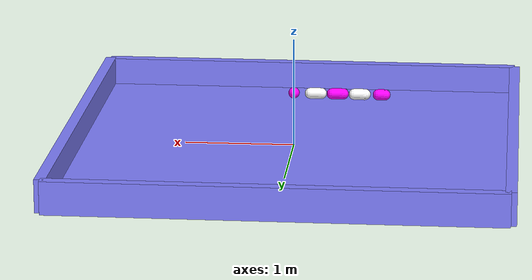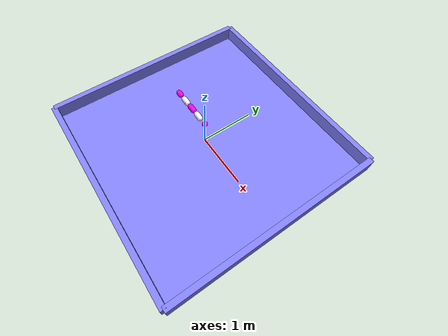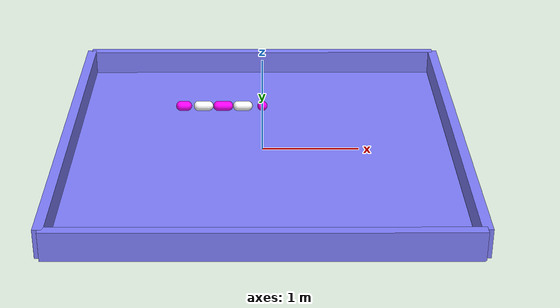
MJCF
<mujoco>
<option gravity="0 0 -25"/>
	<worldbody>
        <light diffuse=".5 .5 .5" pos="0 0 3" dir="0 0 -1"/>
		<geom type="plane" size="2 2 0.1" rgba="0.5 0.5 1 1"/>
        <body name="border" pos="0 0 0"/>
            <geom name="border1" pos="2 0 0.1" type="box" size="0.05 2 0.15" rgba="0.5 0.5 1 1"/>
            <geom name="border2" pos="-2 0 0.1" type="box" size="0.05 2 0.15" rgba="0.5 0.5 1 1"/>
            <geom name="border3" pos="0 2 0.1" type="box" size="0.05 2 0.15" rgba="0.5 0.5 1 1" euler="0 0 90"/>
            <geom name="border4" pos="0 -2 0.1" type="box" size="0.05 2 0.15" rgba="0.5 0.5 1 1" euler="0 0 90"/>

        <body name="body1" pos="0 0 0.5" euler="0 90 0">
			<joint name="joint1" type="free" axis="0.3 0.5 0" pos="0 0 0" range="-50 50"/>
            <geom name="head" type="sphere" size="0.05" rgba="1 0 1 1" euler="0.1 0.1 0"/>
            <body pos="0 0 -0.2" euler="0 0 0">
                <joint name="joint2" type="hinge" axis="0.3 0 0" pos="0 0 0" range="-10 10"/>
			    <geom name="seg2" type="capsule" size="0.05 .05" rgba="1 1 1 1" euler="0.1 0.1 0"/>
                <body pos="0 0 -0.2" euler="0 0 0">
                    <joint name="joint3" type="hinge" axis="0.3 0 0" pos="0 0 0" range="-10 10"/>
                    <geom name="seg3" type="capsule" size="0.05 .05" rgba="1 0 1 1" euler="0.1 0.1 0"/>
                    <body pos="0 0 -0.2" euler="0 0 0">
                        <joint name="joint4" type="hinge" axis="0.3 0 0" pos="0 0 0" range="-10 10"/>
                        <geom name="seg4" type="capsule" size="0.05 .05" rgba="1 1 1 1" euler="0.1 0.1 0"/>
                        <body pos="0 0 -0.2" euler="0 0 0">
                            <joint name="joint5" type="hinge" axis="0.3 0 0" pos="0 0 0" range="-10 10"/>
                            <geom name="tail" type="capsule" size="0.05 .03" rgba="1 0 1 1" euler="0.1 0.1 0"/>
                        </body>
                    </body>
                </body>
            </body>
		</body>
	</worldbody>
    <actuator>
        <motor name="hinge1" gear="30" joint="joint1"/>
        <motor name="hinge2" gear="10" joint="joint2"/>
        <motor name="hinge3" gear="10" joint="joint3"/>
        <motor name="hinge4" gear="10" joint="joint4"/>
    </actuator>
</mujoco>
